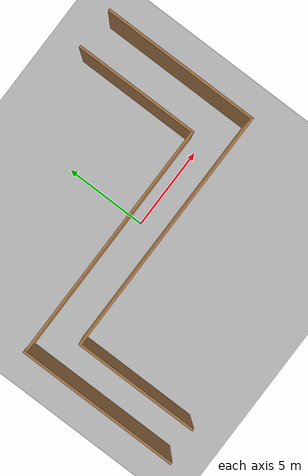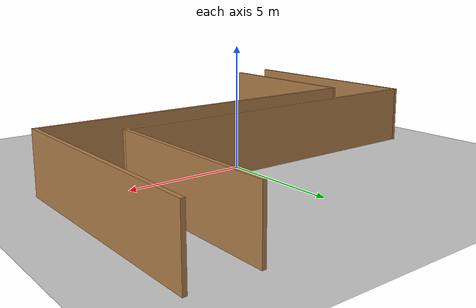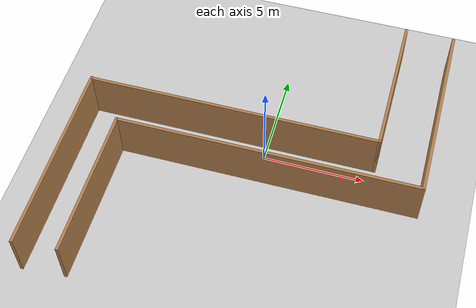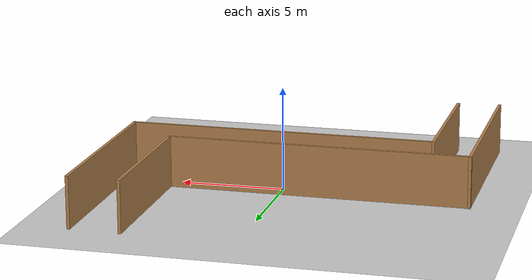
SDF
<sdf version="1.7">
 <world name="default">
  <light name="sun" type="directional">
   <cast_shadows>0</cast_shadows>
   <pose>0 0 10 0 -0 0</pose>
   <diffuse>0.8 0.8 0.8 1</diffuse>
   <specular>0.2 0.2 0.2 1</specular>
   <attenuation>
    <range>1000</range>
    <constant>0.9</constant>
    <linear>0.01</linear>
    <quadratic>0.001</quadratic>
   </attenuation>
   <direction>-0.5 0.1 -0.9</direction>
   <spot><inner_angle>0</inner_angle><outer_angle>0</outer_angle><falloff>0</falloff></spot>
  </light>
  <model name="ground_plane">
   <static>1</static>
   <link name="link">
    <collision name="collision">
     <geometry><plane><normal>0 0 1</normal><size>100 100</size></plane></geometry>
     <surface><friction><ode><mu>100</mu><mu2>50</mu2></ode></friction></surface>
    </collision>
    <visual name="visual">
     <cast_shadows>0</cast_shadows>
     <geometry><plane><normal>0 0 1</normal><size>100 100</size></plane></geometry>
     <material>
      <script><uri>file://media/materials/scripts/gazebo.material</uri><name>Gazebo/Grey</name></script>
     </material>
    </visual>
   </link>
  </model>
  <gravity>0 0 -9.8</gravity>
  <magnetic_field>6e-06 2.3e-05 -4.2e-05</magnetic_field>
  <atmosphere type="adiabatic"/>
  <physics type="ode">
   <max_step_size>0.001</max_step_size>
   <real_time_factor>1</real_time_factor>
   <real_time_update_rate>1000</real_time_update_rate>
  </physics>
  <scene><ambient>0.4 0.4 0.4 1</ambient><background>0.7 0.7 0.7 1</background><shadows>0</shadows></scene>
  <audio><device>default</device></audio>
  <spherical_coordinates>
   <surface_model>EARTH_WGS84</surface_model>
   <latitude_deg>0</latitude_deg>
   <longitude_deg>0</longitude_deg>
   <elevation>0</elevation>
   <heading_deg>0</heading_deg>
  </spherical_coordinates>
  <model name="sensor_test_track">
   <pose>-0.613508 -0.377942 0 0 -0 0</pose>
   <link name="Wall_10">
    <collision name="Wall_10_Collision">
     <geometry><box><size>15 0.15 2.5</size></box></geometry>
     <pose>0 0 1.25 0 -0 0</pose>
    </collision>
    <visual name="Wall_10_Visual">
     <pose>0 0 1.25 0 -0 0</pose>
     <geometry><box><size>15 0.15 2.5</size></box></geometry>
     <material>
      <script><uri>file://media/materials/scripts/gazebo.material</uri><name>Gazebo/Wood</name></script>
      <ambient>1 1 1 1</ambient>
     </material>
     <meta><layer>0</layer></meta>
    </visual>
    <pose>1.04235 -0.948542 0 0 -0 0</pose>
   </link>
   <link name="Wall_11">
    <collision name="Wall_11_Collision">
     <geometry><box><size>9.5 0.15 2.5</size></box></geometry>
     <pose>0 0 1.25 0 -0 0</pose>
    </collision>
    <visual name="Wall_11_Visual">
     <pose>0 0 1.25 0 -0 0</pose>
     <geometry><box><size>9.5 0.15 2.5</size></box></geometry>
     <material>
      <script><uri>file://media/materials/scripts/gazebo.material</uri><name>Gazebo/Wood</name></script>
      <ambient>1 1 1 1</ambient>
     </material>
     <meta><layer>0</layer></meta>
    </visual>
    <pose>8.46735 3.72646 0 0 -0 1.5708</pose>
   </link>
   <link name="Wall_4">
    <collision name="Wall_4_Collision">
     <geometry><box><size>9.75 0.15 2.5</size></box></geometry>
     <pose>0 0 1.25 0 -0 0</pose>
    </collision>
    <visual name="Wall_4_Visual">
     <pose>0 0 1.25 0 -0 0</pose>
     <geometry><box><size>9.75 0.15 2.5</size></box></geometry>
     <material>
      <script><uri>file://media/materials/scripts/gazebo.material</uri><name>Gazebo/Wood</name></script>
      <ambient>1 1 1 1</ambient>
     </material>
     <meta><layer>0</layer></meta>
    </visual>
    <pose>-8.46692 -3.6617 0 0 -0 1.5708</pose>
   </link>
   <link name="Wall_5">
    <collision name="Wall_5_Collision">
     <geometry><box><size>0.15 0.15 2.5</size></box></geometry>
     <pose>0 0 1.25 0 -0 0</pose>
    </collision>
    <visual name="Wall_5_Visual">
     <pose>0 0 1.25 0 -0 0</pose>
     <geometry><box><size>0.15 0.15 2.5</size></box></geometry>
     <material>
      <script><uri>file://media/materials/scripts/gazebo.material</uri><name>Gazebo/Grey</name></script>
      <ambient>1 1 1 1</ambient>
     </material>
     <meta><layer>0</layer></meta>
    </visual>
    <pose>-8.46692 1.1117 0 0 -0 0</pose>
   </link>
   <link name="Wall_6">
    <collision name="Wall_6_Collision">
     <geometry><box><size>14.6445 0.15 2.5</size></box></geometry>
     <pose>0 0 1.25 0 -0 0</pose>
    </collision>
    <visual name="Wall_6_Visual">
     <pose>0 0 1.25 0 -0 0</pose>
     <geometry><box><size>14.6445 0.15 2.5</size></box></geometry>
     <material>
      <script><uri>file://media/materials/scripts/gazebo.material</uri><name>Gazebo/Wood</name></script>
      <ambient>1 1 1 1</ambient>
     </material>
     <meta><layer>0</layer></meta>
    </visual>
    <pose>-1.22012 1.1117 0 0 -0 0</pose>
   </link>
   <link name="Wall_7">
    <collision name="Wall_7_Collision">
     <geometry><box><size>7.5 0.15 2.5</size></box></geometry>
     <pose>0 0 1.25 0 -0 0</pose>
    </collision>
    <visual name="Wall_7_Visual">
     <pose>0 0 1.25 0 -0 0</pose>
     <geometry><box><size>7.5 0.15 2.5</size></box></geometry>
     <material>
      <script><uri>file://media/materials/scripts/gazebo.material</uri><name>Gazebo/Wood</name></script>
      <ambient>1 1 1 1</ambient>
     </material>
     <meta><layer>0</layer></meta>
    </visual>
    <pose>6.02668 4.7867 0 0 -0 1.5708</pose>
   </link>
   <link name="Wall_9">
    <collision name="Wall_9_Collision">
     <geometry><box><size>7.5 0.15 2.5</size></box></geometry>
     <pose>0 0 1.25 0 -0 0</pose>
    </collision>
    <visual name="Wall_9_Visual">
     <pose>0 0 1.25 0 -0 0</pose>
     <geometry><box><size>7.5 0.15 2.5</size></box></geometry>
     <material>
      <script><uri>file://media/materials/scripts/gazebo.material</uri><name>Gazebo/Wood</name></script>
      <ambient>1 1 1 1</ambient>
     </material>
     <meta><layer>0</layer></meta>
    </visual>
    <pose>-6.38265 -4.62354 0 0 -0 1.5708</pose>
   </link>
   <static>1</static>
  </model>
 </world>
</sdf>
